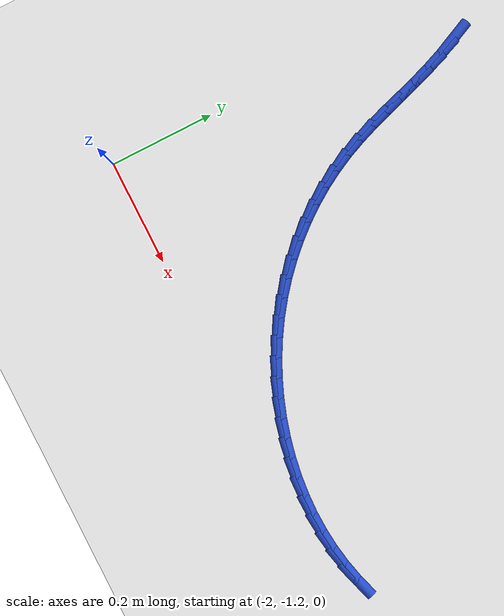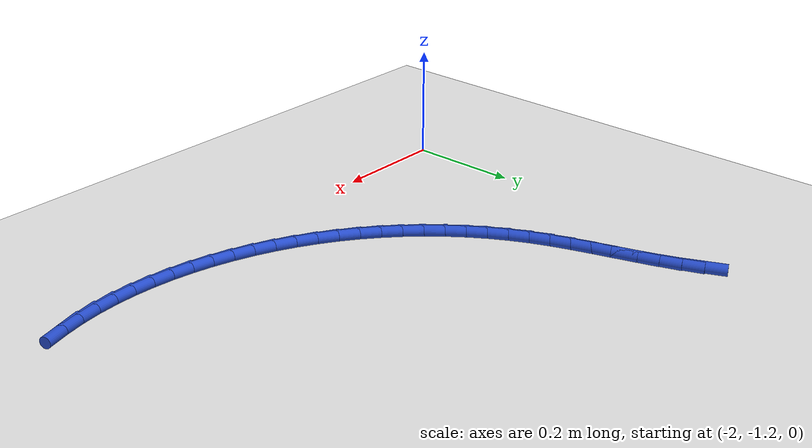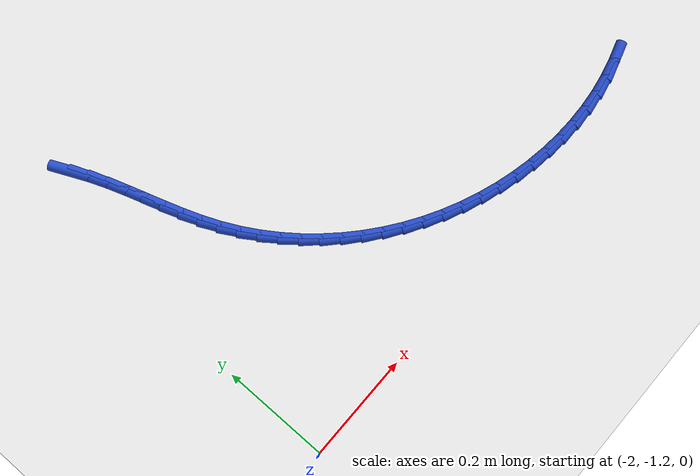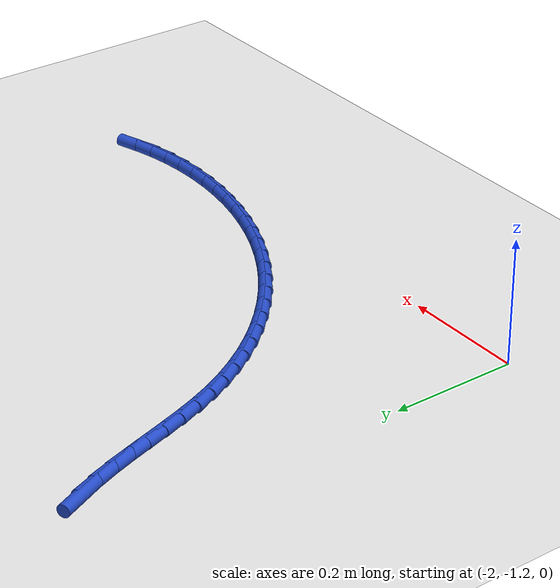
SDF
<sdf version="1.6">
 <world name="default">
  <model name="ground_plane">
   <static>1</static>
   <link name="link">
    <collision name="collision">
     <geometry><plane><normal>0 0 1</normal><size>100 100</size></plane></geometry>
     <surface><friction><ode><mu>100</mu><mu2>50</mu2></ode></friction></surface>
    </collision>
    <visual name="visual">
     <cast_shadows>0</cast_shadows>
     <geometry><plane><normal>0 0 1</normal><size>100 100</size></plane></geometry>
     <material>
      <script><uri>file://media/materials/scripts/gazebo.material</uri><name>Gazebo/WhiteGlow</name></script>
     </material>
    </visual>
   </link>
  </model>
  <model name="line">
   <link name="link_110">
    <pose>-1.9210421468954786 -0.5450885131828257 0.01 0 1.57 -1.1427397562317763</pose>
    <collision name="collision">
     <geometry><cylinder><radius>0.01</radius><length>0.08</length></cylinder></geometry>
    </collision>
    <visual name="visual">
     <material>
      <script><name>Gazebo/Blue</name><uri>file://media/materials/scripts/gazebo.material</uri></script>
     </material>
     <geometry><cylinder><radius>0.01</radius><length>0.08</length></cylinder></geometry>
    </visual>
   </link>
   <link name="link_111">
    <pose>-1.9062891613820139 -0.5774223414724186 0.01 0 1.57 -1.1988419283086695</pose>
    <collision name="collision">
     <geometry><cylinder><radius>0.01</radius><length>0.08</length></cylinder></geometry>
    </collision>
    <visual name="visual">
     <material>
      <script><name>Gazebo/Blue</name><uri>file://media/materials/scripts/gazebo.material</uri></script>
     </material>
     <geometry><cylinder><radius>0.01</radius><length>0.08</length></cylinder></geometry>
    </visual>
   </link>
   <link name="link_112">
    <pose>-1.8933608968048652 -0.6105621116420091 0.01 0 1.57 -1.2373948520117202</pose>
    <collision name="collision">
     <geometry><cylinder><radius>0.01</radius><length>0.08</length></cylinder></geometry>
    </collision>
    <visual name="visual">
     <material>
      <script><name>Gazebo/Blue</name><uri>file://media/materials/scripts/gazebo.material</uri></script>
     </material>
     <geometry><cylinder><radius>0.01</radius><length>0.08</length></cylinder></geometry>
    </visual>
   </link>
   <link name="link_113">
    <pose>-1.8816895173719874 -0.6442622937571593 0.01 0 1.57 -1.2584951708372176</pose>
    <collision name="collision">
     <geometry><cylinder><radius>0.01</radius><length>0.08</length></cylinder></geometry>
    </collision>
    <visual name="visual">
     <material>
      <script><name>Gazebo/Blue</name><uri>file://media/materials/scripts/gazebo.material</uri></script>
     </material>
     <geometry><cylinder><radius>0.01</radius><length>0.08</length></cylinder></geometry>
    </visual>
   </link>
   <link name="link_114">
    <pose>-1.8707071872913374 -0.6782773578834284 0.01 0 1.57 -1.26231533843002</pose>
    <collision name="collision">
     <geometry><cylinder><radius>0.01</radius><length>0.08</length></cylinder></geometry>
    </collision>
    <visual name="visual">
     <material>
      <script><name>Gazebo/Blue</name><uri>file://media/materials/scripts/gazebo.material</uri></script>
     </material>
     <geometry><cylinder><radius>0.01</radius><length>0.08</length></cylinder></geometry>
    </visual>
   </link>
   <link name="link_115">
    <pose>-1.8598460707708728 -0.7123617740863777 0.01 0 1.57 -1.2489132625642443</pose>
    <collision name="collision">
     <geometry><cylinder><radius>0.01</radius><length>0.08</length></cylinder></geometry>
    </collision>
    <visual name="visual">
     <material>
      <script><name>Gazebo/Blue</name><uri>file://media/materials/scripts/gazebo.material</uri></script>
     </material>
     <geometry><cylinder><radius>0.01</radius><length>0.08</length></cylinder></geometry>
    </visual>
   </link>
   <link name="link_116">
    <pose>-1.8485383320185507 -0.7462700124315673 0.01 0 1.57 -1.2181989843950993</pose>
    <collision name="collision">
     <geometry><cylinder><radius>0.01</radius><length>0.08</length></cylinder></geometry>
    </collision>
    <visual name="visual">
     <material>
      <script><name>Gazebo/Blue</name><uri>file://media/materials/scripts/gazebo.material</uri></script>
     </material>
     <geometry><cylinder><radius>0.01</radius><length>0.08</length></cylinder></geometry>
    </visual>
   </link>
   <link name="link_117">
    <pose>-1.8362161352423259 -0.7797565429845573 0.01 0 1.57 -1.1700554669555767</pose>
    <collision name="collision">
     <geometry><cylinder><radius>0.01</radius><length>0.08</length></cylinder></geometry>
    </collision>
    <visual name="visual">
     <material>
      <script><name>Gazebo/Blue</name><uri>file://media/materials/scripts/gazebo.material</uri></script>
     </material>
     <geometry><cylinder><radius>0.01</radius><length>0.08</length></cylinder></geometry>
    </visual>
   </link>
   <link name="link_118">
    <pose>-1.8223116867822402 -0.8125758457522569 0.01 0 1.57 -1.108393078131861</pose>
    <collision name="collision">
     <geometry><cylinder><radius>0.01</radius><length>0.08</length></cylinder></geometry>
    </collision>
    <visual name="visual">
     <material>
      <script><name>Gazebo/Blue</name><uri>file://media/materials/scripts/gazebo.material</uri></script>
     </material>
     <geometry><cylinder><radius>0.01</radius><length>0.08</length></cylinder></geometry>
    </visual>
   </link>
   <link name="link_119">
    <pose>-1.8063921365878621 -0.8445142415951988 0.01 0 1.57 -1.0455947440453457</pose>
    <collision name="collision">
     <geometry><cylinder><radius>0.01</radius><length>0.08</length></cylinder></geometry>
    </collision>
    <visual name="visual">
     <material>
      <script><name>Gazebo/Blue</name><uri>file://media/materials/scripts/gazebo.material</uri></script>
     </material>
     <geometry><cylinder><radius>0.01</radius><length>0.08</length></cylinder></geometry>
    </visual>
   </link>
   <link name="link_120">
    <pose>-1.788459075067571 -0.8754605605264744 0.01 0 1.57 -0.98398583005191</pose>
    <collision name="collision">
     <geometry><cylinder><radius>0.01</radius><length>0.08</length></cylinder></geometry>
    </collision>
    <visual name="visual">
     <material>
      <script><name>Gazebo/Blue</name><uri>file://media/materials/scripts/gazebo.material</uri></script>
     </material>
     <geometry><cylinder><radius>0.01</radius><length>0.08</length></cylinder></geometry>
    </visual>
   </link>
   <link name="link_121">
    <pose>-1.7686013501038202 -0.9053242215479337 0.01 0 1.57 -0.9233868374908584</pose>
    <collision name="collision">
     <geometry><cylinder><radius>0.01</radius><length>0.08</length></cylinder></geometry>
    </collision>
    <visual name="visual">
     <material>
      <script><name>Gazebo/Blue</name><uri>file://media/materials/scripts/gazebo.material</uri></script>
     </material>
     <geometry><cylinder><radius>0.01</radius><length>0.08</length></cylinder></geometry>
    </visual>
   </link>
   <link name="link_122">
    <pose>-1.7469078095790653 -0.9340146436614267 0.01 0 1.57 -0.8636012441224182</pose>
    <collision name="collision">
     <geometry><cylinder><radius>0.01</radius><length>0.08</length></cylinder></geometry>
    </collision>
    <visual name="visual">
     <material>
      <script><name>Gazebo/Blue</name><uri>file://media/materials/scripts/gazebo.material</uri></script>
     </material>
     <geometry><cylinder><radius>0.01</radius><length>0.08</length></cylinder></geometry>
    </visual>
   </link>
   <link name="link_123">
    <pose>-1.7234673013757602 -0.961441245868803 0.01 0 1.57 -0.8044218116168196</pose>
    <collision name="collision">
     <geometry><cylinder><radius>0.01</radius><length>0.08</length></cylinder></geometry>
    </collision>
    <visual name="visual">
     <material>
      <script><name>Gazebo/Blue</name><uri>file://media/materials/scripts/gazebo.material</uri></script>
     </material>
     <geometry><cylinder><radius>0.01</radius><length>0.08</length></cylinder></geometry>
    </visual>
   </link>
   <link name="link_124">
    <pose>-1.6983686733763594 -0.9875134471719124 0.01 0 1.57 -0.7456359995220512</pose>
    <collision name="collision">
     <geometry><cylinder><radius>0.01</radius><length>0.08</length></cylinder></geometry>
    </collision>
    <visual name="visual">
     <material>
      <script><name>Gazebo/Blue</name><uri>file://media/materials/scripts/gazebo.material</uri></script>
     </material>
     <geometry><cylinder><radius>0.01</radius><length>0.08</length></cylinder></geometry>
    </visual>
   </link>
   <link name="link_125">
    <pose>-1.6717007734633178 -1.0121406665726043 0.01 0 1.57 -0.6870306940200431</pose>
    <collision name="collision">
     <geometry><cylinder><radius>0.01</radius><length>0.08</length></cylinder></geometry>
    </collision>
    <visual name="visual">
     <material>
      <script><name>Gazebo/Blue</name><uri>file://media/materials/scripts/gazebo.material</uri></script>
     </material>
     <geometry><cylinder><radius>0.01</radius><length>0.08</length></cylinder></geometry>
    </visual>
   </link>
   <link name="link_126">
    <pose>-1.6435524495190883 -1.0352323230727294 0.01 0 1.57 -0.6283964939668284</pose>
    <collision name="collision">
     <geometry><cylinder><radius>0.01</radius><length>0.08</length></cylinder></geometry>
    </collision>
    <visual name="visual">
     <material>
      <script><name>Gazebo/Blue</name><uri>file://media/materials/scripts/gazebo.material</uri></script>
     </material>
     <geometry><cylinder><radius>0.01</radius><length>0.08</length></cylinder></geometry>
    </visual>
   </link>
   <link name="link_127">
    <pose>-1.6140125494261262 -1.056697835674137 0.01 0 1.57 -0.5695318007948154</pose>
    <collision name="collision">
     <geometry><cylinder><radius>0.01</radius><length>0.08</length></cylinder></geometry>
    </collision>
    <visual name="visual">
     <material>
      <script><name>Gazebo/Blue</name><uri>file://media/materials/scripts/gazebo.material</uri></script>
     </material>
     <geometry><cylinder><radius>0.01</radius><length>0.08</length></cylinder></geometry>
    </visual>
   </link>
   <link name="link_128">
    <pose>-1.5831699210668853 -1.0764466233786767 0.01 0 1.57 -0.5104282986136042</pose>
    <collision name="collision">
     <geometry><cylinder><radius>0.01</radius><length>0.08</length></cylinder></geometry>
    </collision>
    <visual name="visual">
     <material>
      <script><name>Gazebo/Blue</name><uri>file://media/materials/scripts/gazebo.material</uri></script>
     </material>
     <geometry><cylinder><radius>0.01</radius><length>0.08</length></cylinder></geometry>
    </visual>
   </link>
   <link name="link_129">
    <pose>-1.5511208054209642 -1.0943916012611699 0.01 0 1.57 -0.45195942833608127</pose>
    <collision name="collision">
     <geometry><cylinder><radius>0.01</radius><length>0.08</length></cylinder></geometry>
    </collision>
    <visual name="visual">
     <material>
      <script><name>Gazebo/Blue</name><uri>file://media/materials/scripts/gazebo.material</uri></script>
     </material>
     <geometry><cylinder><radius>0.01</radius><length>0.08</length></cylinder></geometry>
    </visual>
   </link>
   <link name="link_130">
    <pose>-1.5180072771817121 -1.1104673583991873 0.01 0 1.57 -0.39416773013466944</pose>
    <collision name="collision">
     <geometry><cylinder><radius>0.01</radius><length>0.08</length></cylinder></geometry>
    </collision>
    <visual name="visual">
     <material>
      <script><name>Gazebo/Blue</name><uri>file://media/materials/scripts/gazebo.material</uri></script>
     </material>
     <geometry><cylinder><radius>0.01</radius><length>0.08</length></cylinder></geometry>
    </visual>
   </link>
   <link name="link_131">
    <pose>-1.4839889519298128 -1.1246167786648775 0.01 0 1.57 -0.3366432757738963</pose>
    <collision name="collision">
     <geometry><cylinder><radius>0.01</radius><length>0.08</length></cylinder></geometry>
    </collision>
    <visual name="visual">
     <material>
      <script><name>Gazebo/Blue</name><uri>file://media/materials/scripts/gazebo.material</uri></script>
     </material>
     <geometry><cylinder><radius>0.01</radius><length>0.08</length></cylinder></geometry>
    </visual>
   </link>
   <link name="link_132">
    <pose>-1.449225480722035 -1.1367827627064413 0.01 0 1.57 -0.2789728427430672</pose>
    <collision name="collision">
     <geometry><cylinder><radius>0.01</radius><length>0.08</length></cylinder></geometry>
    </collision>
    <visual name="visual">
     <material>
      <script><name>Gazebo/Blue</name><uri>file://media/materials/scripts/gazebo.material</uri></script>
     </material>
     <geometry><cylinder><radius>0.01</radius><length>0.08</length></cylinder></geometry>
    </visual>
   </link>
   <link name="link_133">
    <pose>-1.413876514615143 -1.1469082111720779 0.01 0 1.57 -0.22074184823419235</pose>
    <collision name="collision">
     <geometry><cylinder><radius>0.01</radius><length>0.08</length></cylinder></geometry>
    </collision>
    <visual name="visual">
     <material>
      <script><name>Gazebo/Blue</name><uri>file://media/materials/scripts/gazebo.material</uri></script>
     </material>
     <geometry><cylinder><radius>0.01</radius><length>0.08</length></cylinder></geometry>
    </visual>
   </link>
   <link name="link_134">
    <pose>-1.3781017046659052 -1.1549360247099878 0.01 0 1.57 -0.16153564410003332</pose>
    <collision name="collision">
     <geometry><cylinder><radius>0.01</radius><length>0.08</length></cylinder></geometry>
    </collision>
    <visual name="visual">
     <material>
      <script><name>Gazebo/Blue</name><uri>file://media/materials/scripts/gazebo.material</uri></script>
     </material>
     <geometry><cylinder><radius>0.01</radius><length>0.08</length></cylinder></geometry>
    </visual>
   </link>
   <link name="link_135">
    <pose>-1.3420607019310877 -1.1608091039683703 0.01 0 1.57 -0.1009419059550995</pose>
    <collision name="collision">
     <geometry><cylinder><radius>0.01</radius><length>0.08</length></cylinder></geometry>
    </collision>
    <visual name="visual">
     <material>
      <script><name>Gazebo/Blue</name><uri>file://media/materials/scripts/gazebo.material</uri></script>
     </material>
     <geometry><cylinder><radius>0.01</radius><length>0.08</length></cylinder></geometry>
    </visual>
   </link>
   <link name="link_136">
    <pose>-1.3059131574674578 -1.1644703495954256 0.01 0 1.57 -0.03855504825703551</pose>
    <collision name="collision">
     <geometry><cylinder><radius>0.01</radius><length>0.08</length></cylinder></geometry>
    </collision>
    <visual name="visual">
     <material>
      <script><name>Gazebo/Blue</name><uri>file://media/materials/scripts/gazebo.material</uri></script>
     </material>
     <geometry><cylinder><radius>0.01</radius><length>0.08</length></cylinder></geometry>
    </visual>
   </link>
   <link name="link_137">
    <pose>-1.2698187223317823 -1.1658626622393535 0.01 0 1.57 0.026016316842506826</pose>
    <collision name="collision">
     <geometry><cylinder><radius>0.01</radius><length>0.08</length></cylinder></geometry>
    </collision>
    <visual name="visual">
     <material>
      <script><name>Gazebo/Blue</name><uri>file://media/materials/scripts/gazebo.material</uri></script>
     </material>
     <geometry><cylinder><radius>0.01</radius><length>0.08</length></cylinder></geometry>
    </visual>
   </link>
   <link name="link_138">
    <pose>-1.2339370475808276 -1.1649289425483538 0.01 0 1.57 0.09313780898853363</pose>
    <collision name="collision">
     <geometry><cylinder><radius>0.01</radius><length>0.08</length></cylinder></geometry>
    </collision>
    <visual name="visual">
     <material>
      <script><name>Gazebo/Blue</name><uri>file://media/materials/scripts/gazebo.material</uri></script>
     </material>
     <geometry><cylinder><radius>0.01</radius><length>0.08</length></cylinder></geometry>
    </visual>
   </link>
   <link name="link_139">
    <pose>-1.1984277842713615 -1.1616120911706265 0.01 0 1.57 0.16313260680181035</pose>
    <collision name="collision">
     <geometry><cylinder><radius>0.01</radius><length>0.08</length></cylinder></geometry>
    </collision>
    <visual name="visual">
     <material>
      <script><name>Gazebo/Blue</name><uri>file://media/materials/scripts/gazebo.material</uri></script>
     </material>
     <geometry><cylinder><radius>0.01</radius><length>0.08</length></cylinder></geometry>
    </visual>
   </link>
   <link name="link_140">
    <pose>-1.1634505834601492 -1.155855008754371 0.01 0 1.57 0.23424189434391693</pose>
    <collision name="collision">
     <geometry><cylinder><radius>0.01</radius><length>0.08</length></cylinder></geometry>
    </collision>
    <visual name="visual">
     <material>
      <script><name>Gazebo/Blue</name><uri>file://media/materials/scripts/gazebo.material</uri></script>
     </material>
     <geometry><cylinder><radius>0.01</radius><length>0.08</length></cylinder></geometry>
    </visual>
   </link>
   <link name="link_141">
    <pose>-1.1291263593521117 -1.1476644839347576 0.01 0 1.57 0.29601907898857965</pose>
    <collision name="collision">
     <geometry><cylinder><radius>0.01</radius><length>0.08</length></cylinder></geometry>
    </collision>
    <visual name="visual">
     <material>
      <script><name>Gazebo/Blue</name><uri>file://media/materials/scripts/gazebo.material</uri></script>
     </material>
     <geometry><cylinder><radius>0.01</radius><length>0.08</length></cylinder></geometry>
    </visual>
   </link>
  </model>
 </world>
</sdf>
